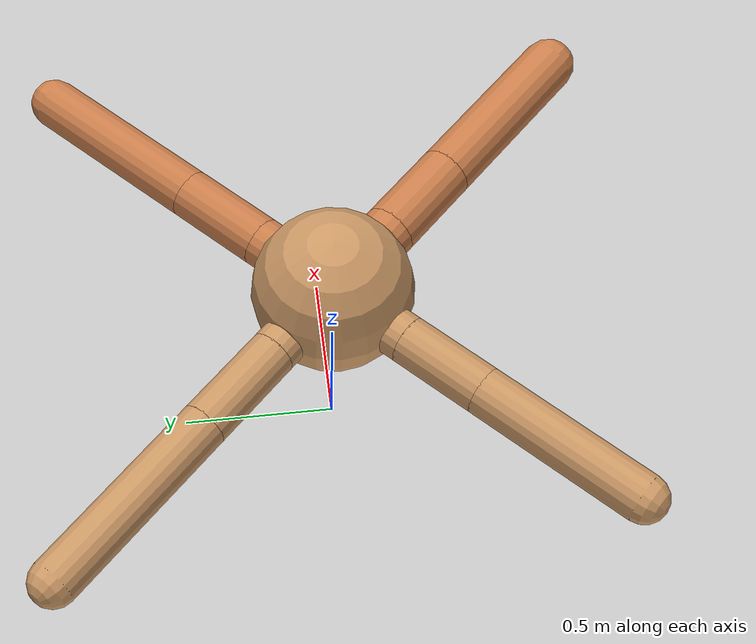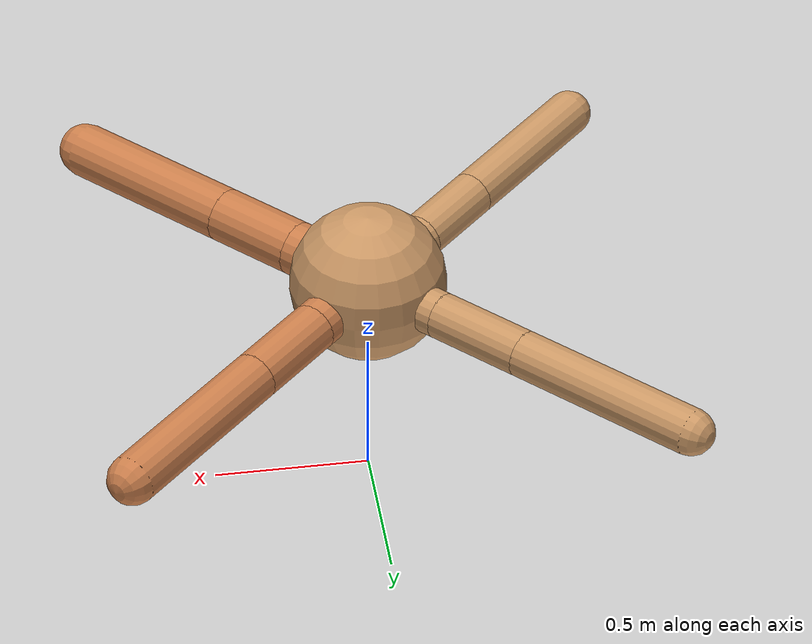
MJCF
<?xml version="1.0" ?>
<mujoco model="ant">

	<compiler angle="degree" coordinate="local" inertiafromgeom="true"/>

	<option integrator="RK4" timestep="0.01"/>

	<custom>

		<numeric data="0.0 0.0 0.55 1.0 0.0 0.0 0.0 0.0 1.0 0.0 -1.0 0.0 -1.0 0.0 1.0" name="init_qpos"/>

	</custom>

	<default>

		<joint armature="1" damping="1" limited="true"/>

		<geom conaffinity="0" condim="3" density="5.0" friction="1.5 0.1 0.1" margin="0.01" rgba="0.8 0.6 0.4 1"/>

	</default>

	<worldbody>

		<body name="torso" pos="0 0 0.75">

			<geom name="torso_geom" pos="0 0 0" size="0.2497478045956722" type="sphere"/>

			<!--joint armature="0" damping="0" limited="false" margin="0.01" name="root" pos="0 0 0" type="free"/-->

			<body name="front_left_leg" pos="0 0 0">

				<geom fromto="0 0 0 0.2 0.2 0" name="aux_1_geom" size="0.07858222081221274" type="capsule" rgba=".8 .5 .3 1"/>

				<body name="aux_1" pos="0.2 0.2 0">

					<joint axis="0 0 1" name="hip_1" pos="0.0 0.0 0.0" range="-40 40" type="hinge"/>

					<geom fromto="0 0 0 0.20805925238449596 0.20805925238449596 0" name="left_leg_geom" size="0.07858222081221274" type="capsule" rgba=".8 .5 .3 1"/>

					<body pos="0.20805925238449596 0.20805925238449596 0" name="front_left_foot">

						<joint axis="-1 1 0" name="ankle_1" pos="0.0 0.0 0.0" range="30 100" type="hinge"/>

						<geom fromto="0 0 0 0.4161185047689919 0.4161185047689919 0" name="left_ankle_geom" size="0.07858222081221274" type="capsule" rgba=".8 .5 .3 1"/>

					</body>

				</body>

			</body>

			<body name="front_right_leg" pos="0 0 0">

				<geom fromto="0 0 0 -0.2 0.2 0" name="aux_2_geom" size="0.07363783319649005" type="capsule"/>

				<body name="aux_2" pos="-0.2 0.2 0">

					<joint axis="0 0 1" name="hip_2" pos="0.0 0.0 0.0" range="-40 40" type="hinge"/>

					<geom fromto="0 0 0 -0.21817780813487264 0.21817780813487264 0" name="right_leg_geom" size="0.07363783319649005" type="capsule"/>

					<body pos="-0.21817780813487264 0.21817780813487264 0" name="front_right_foot">

						<joint axis="1 1 0" name="ankle_2" pos="0.0 0.0 0.0" range="-100 -30" type="hinge"/>

						<geom fromto="0 0 0 -0.4363556162697453 0.4363556162697453 0" name="right_ankle_geom" size="0.07363783319649005" type="capsule"/>

					</body>

				</body>

			</body>

			<body name="left_back_leg" pos="0 0 0">

				<geom fromto="0 0 0 -0.2 -0.2 0" name="aux_3_geom" size="0.07482757388832043" type="capsule"/>

				<body name="aux_3" pos="-0.2 -0.2 0">

					<joint axis="0 0 1" name="hip_3" pos="0.0 0.0 0.0" range="-40 40" type="hinge"/>

					<geom fromto="0 0 0 -0.19453960809592397 -0.19453960809592397 0" name="back_leg_geom" size="0.07482757388832043" type="capsule"/>

					<body pos="-0.19453960809592397 -0.19453960809592397 0" name="left_back_foot">

						<joint axis="-1 1 0" name="ankle_3" pos="0.0 0.0 0.0" range="-100 -30" type="hinge"/>

						<geom fromto="0 0 0 -0.38907921619184793 -0.38907921619184793 0" name="third_ankle_geom" size="0.07482757388832043" type="capsule"/>

					</body>

				</body>

			</body>

			<body name="right_back_leg" pos="0 0 0">

				<geom fromto="0 0 0 0.2 -0.2 0" name="aux_4_geom" size="0.08704828722638429" type="capsule" rgba=".8 .5 .3 1"/>

				<body name="aux_4" pos="0.2 -0.2 0">

					<joint axis="0 0 1" name="hip_4" pos="0.0 0.0 0.0" range="-40 40" type="hinge"/>

					<geom fromto="0 0 0 0.20436655728227715 -0.20436655728227715 0" name="rightback_leg_geom" size="0.08704828722638429" type="capsule" rgba=".8 .5 .3 1"/>

					<body pos="0.20436655728227715 -0.20436655728227715 0" name="right_back_foot">

						<joint axis="1 1 0" name="ankle_4" pos="0.0 0.0 0.0" range="30 100" type="hinge"/>

						<geom fromto="0 0 0 0.4087331145645543 -0.4087331145645543 0" name="fourth_ankle_geom" size="0.08704828722638429" type="capsule" rgba=".8 .5 .3 1"/>

					</body>

				</body>

			</body>

		</body>

	</worldbody>

	<actuator>

		<motor ctrllimited="true" ctrlrange="-1.0 1.0" joint="hip_4" gear="150"/>

		<motor ctrllimited="true" ctrlrange="-1.0 1.0" joint="ankle_4" gear="150"/>

		<motor ctrllimited="true" ctrlrange="-1.0 1.0" joint="hip_1" gear="150"/>

		<motor ctrllimited="true" ctrlrange="-1.0 1.0" joint="ankle_1" gear="150"/>

		<motor ctrllimited="true" ctrlrange="-1.0 1.0" joint="hip_2" gear="150"/>

		<motor ctrllimited="true" ctrlrange="-1.0 1.0" joint="ankle_2" gear="150"/>

		<motor ctrllimited="true" ctrlrange="-1.0 1.0" joint="hip_3" gear="150"/>

		<motor ctrllimited="true" ctrlrange="-1.0 1.0" joint="ankle_3" gear="150"/>

	</actuator>

</mujoco>
